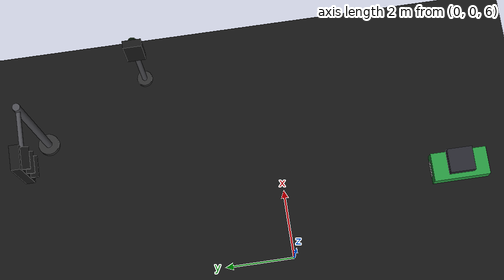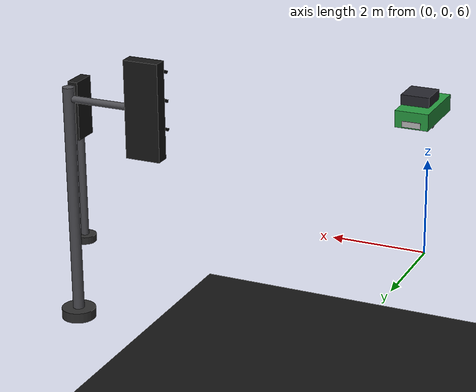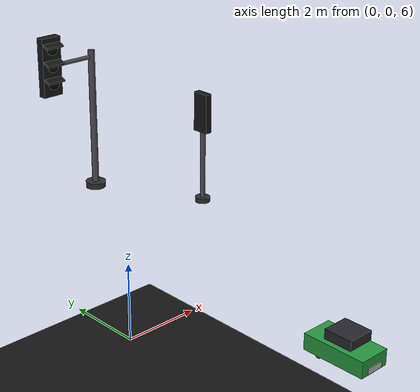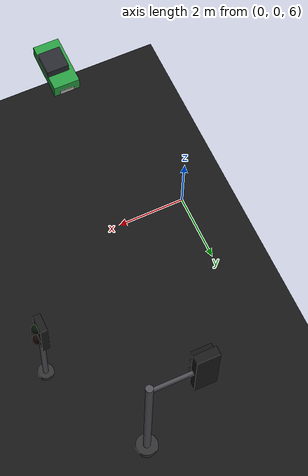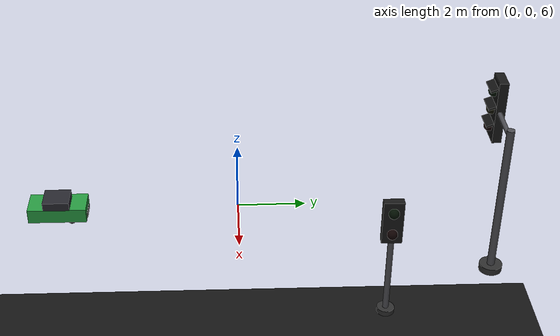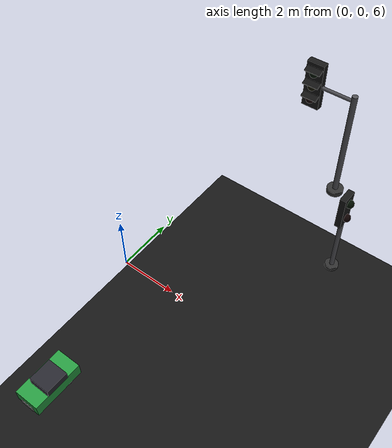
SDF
<sdf version="1.6">
 <world name="v2x_city_scene">
  <model name="ground_plane">
   <static>true</static>
   <link name="link">
    <collision name="collision">
     <geometry><plane><normal>0 0 1</normal><size>200 200</size></plane></geometry>
    </collision>
    <visual name="visual">
     <geometry><plane><normal>0 0 1</normal><size>200 200</size></plane></geometry>
     <material>
      <ambient>0.05 0.05 0.05 1</ambient>
      <diffuse>0.08 0.08 0.08 1</diffuse>
      <specular>0.0 0.0 0.0 1</specular>
     </material>
    </visual>
   </link>
  </model>
  <model name="car_2">
   <pose>1.8000 -5.0000 7.0000 0 0 1.5708</pose>
   <link name="chassis">
    <inertial>
     <mass>80.0</mass>
     <inertia><ixx>2.13</ixx><ixy>0</ixy><iyy>17.07</iyy><ixz>0</ixz><iyz>0</iyz><izz>17.07</izz></inertia>
    </inertial>
    <collision name="chassis_collision">
     <pose>0 0 0.25 0 0 0</pose>
     <geometry><box><size>1.6 0.8 0.4</size></box></geometry>
    </collision>
    <visual name="chassis_body">
     <pose>0 0 0.25 0 0 0</pose>
     <geometry><box><size>1.6 0.8 0.4</size></box></geometry>
     <material><ambient>0.15 0.6 0.25 1</ambient><diffuse>0.15 0.6 0.25 1</diffuse></material>
    </visual>
    <visual name="plate_rear">
     <pose>-0.81 0 0.15 0 0 3.14159265358979</pose>
     <geometry><box><size>0.02 0.44 0.14</size></box></geometry>
     <material>
      <script>
       <uri>file:///tmp/v2x_plates/placeholder/placeholder.material</uri>
       <name>v2x/plate_placeholder</name>
      </script>
     </material>
    </visual>
    <visual name="plate_front">
     <pose>0.81 0 0.15 0 0 0</pose>
     <geometry><box><size>0.02 0.44 0.14</size></box></geometry>
     <material>
      <script>
       <uri>file:///tmp/v2x_plates/placeholder/placeholder.material</uri>
       <name>v2x/plate_placeholder</name>
      </script>
     </material>
    </visual>
    <visual name="cabin">
     <pose>0 -0.08 0.57 0 0 0</pose>
     <geometry><box><size>0.72 0.68 0.24</size></box></geometry>
     <material><ambient>0.1 0.1 0.12 1</ambient><diffuse>0.15 0.15 0.18 1</diffuse></material>
    </visual>
   </link>
   <link name="left_wheel_link">
    <pose>0.40 0.35 0.10 0 0 0</pose>
    <inertial>
     <mass>2.0</mass>
     <inertia>
      <ixx>0.005067</ixx>
      <iyy>0.010000</iyy>
      <izz>0.005067</izz>
      <ixy>0</ixy>
      <ixz>0</ixz>
      <iyz>0</iyz>
     </inertia>
    </inertial>
    <collision name="collision">
     <pose>0 0 0 1.5707963 0 0</pose>
     <geometry><cylinder><radius>0.10</radius><length>0.08</length></cylinder></geometry>
     <surface>
      <friction><ode><mu>1.0</mu><mu2>1.0</mu2></ode></friction>
      <contact><ode><min_depth>0.001</min_depth><kp>1e8</kp></ode></contact>
     </surface>
    </collision>
    <visual name="visual">
     <pose>0 0 0 1.5707963 0 0</pose>
     <geometry><cylinder><radius>0.10</radius><length>0.08</length></cylinder></geometry>
     <material><ambient>0.05 0.05 0.05 1</ambient><diffuse>0.1 0.1 0.1 1</diffuse></material>
    </visual>
   </link>
   <joint name="left_wheel_joint" type="revolute">
    <parent>chassis</parent>
    <child>left_wheel_link</child>
    <axis><xyz>0 1 0</xyz><dynamics><friction>0.1</friction></dynamics></axis>
   </joint>
   <link name="right_wheel_link">
    <pose>0.40 -0.35 0.10 0 0 0</pose>
    <inertial>
     <mass>2.0</mass>
     <inertia>
      <ixx>0.005067</ixx>
      <iyy>0.010000</iyy>
      <izz>0.005067</izz>
      <ixy>0</ixy>
      <ixz>0</ixz>
      <iyz>0</iyz>
     </inertia>
    </inertial>
    <collision name="collision">
     <pose>0 0 0 1.5707963 0 0</pose>
     <geometry><cylinder><radius>0.10</radius><length>0.08</length></cylinder></geometry>
     <surface>
      <friction><ode><mu>1.0</mu><mu2>1.0</mu2></ode></friction>
      <contact><ode><min_depth>0.001</min_depth><kp>1e8</kp></ode></contact>
     </surface>
    </collision>
    <visual name="visual">
     <pose>0 0 0 1.5707963 0 0</pose>
     <geometry><cylinder><radius>0.10</radius><length>0.08</length></cylinder></geometry>
     <material><ambient>0.05 0.05 0.05 1</ambient><diffuse>0.1 0.1 0.1 1</diffuse></material>
    </visual>
   </link>
   <joint name="right_wheel_joint" type="revolute">
    <parent>chassis</parent>
    <child>right_wheel_link</child>
    <axis><xyz>0 1 0</xyz><dynamics><friction>0.1</friction></dynamics></axis>
   </joint>
   <link name="caster_link">
    <pose>-0.40 0 0.06 0 0 0</pose>
    <inertial>
     <mass>0.5</mass>
     <inertia><ixx>0.001</ixx><iyy>0.001</iyy><izz>0.001</izz><ixy>0</ixy><ixz>0</ixz><iyz>0</iyz></inertia>
    </inertial>
    <collision name="collision">
     <geometry><sphere><radius>0.06</radius></sphere></geometry>
     <surface>
      <friction><ode><mu>0.0</mu><mu2>0.0</mu2></ode></friction>
      <contact><ode><min_depth>0.001</min_depth><kp>1e8</kp></ode></contact>
     </surface>
    </collision>
    <visual name="visual">
     <geometry><sphere><radius>0.06</radius></sphere></geometry>
     <material><ambient>0.2 0.2 0.2 1</ambient><diffuse>0.3 0.3 0.3 1</diffuse></material>
    </visual>
   </link>
   <joint name="caster_joint" type="fixed"><parent>chassis</parent><child>caster_link</child></joint>
   <plugin name="diff_drive" filename="libgazebo_ros_diff_drive.so">
    <ros>
     <namespace>/car_2</namespace>
     <remapping>cmd_vel:=cmd_vel</remapping>
     <remapping>odom:=odom</remapping>
    </ros>
    <update_rate>100</update_rate>
    <cmd_vel_timeout>0.3</cmd_vel_timeout>
    <left_joint>left_wheel_joint</left_joint>
    <right_joint>right_wheel_joint</right_joint>
    <wheel_separation>0.70</wheel_separation>
    <wheel_diameter>0.20</wheel_diameter>
    <max_wheel_torque>12.0</max_wheel_torque>
    <max_wheel_acceleration>6.0</max_wheel_acceleration>
    <publish_odom>true</publish_odom>
    <publish_odom_tf>false</publish_odom_tf>
    <publish_wheel_tf>false</publish_wheel_tf>
    <odometry_frame>car_2_odom</odometry_frame>
    <robot_base_frame>car_2/base_link</robot_base_frame>
   </plugin>
  </model>
  <model name="tl_j3_ns">
   <static>true</static>
   <pose>4.2 6.6 6.7 0 0 0</pose>
   <link name="pole_link">
    <visual name="base_visual">
     <pose>0 0 0.09 0 0 0</pose>
     <geometry><cylinder><radius>0.30</radius><length>0.18</length></cylinder></geometry>
     <material><ambient>0.10 0.10 0.10 1</ambient><diffuse>0.18 0.18 0.18 1</diffuse></material>
    </visual>
    <visual name="pole_visual">
     <pose>0 0 2.20 0 0 0</pose>
     <geometry><cylinder><radius>0.10</radius><length>4.10</length></cylinder></geometry>
     <material><ambient>0.16 0.16 0.16 1</ambient><diffuse>0.30 0.30 0.32 1</diffuse></material>
    </visual>
    <visual name="arm_visual">
     <pose>-0.75 0 4.05 0 1.5708 0</pose>
     <geometry><cylinder><radius>0.06</radius><length>1.60</length></cylinder></geometry>
     <material><ambient>0.16 0.16 0.16 1</ambient><diffuse>0.30 0.30 0.32 1</diffuse></material>
    </visual>
    <visual name="housing_visual">
     <pose>-1.45 0.02 4.05 0 0 0</pose>
     <geometry><box><size>0.62 0.24 1.70</size></box></geometry>
     <material><ambient>0.04 0.04 0.04 1</ambient><diffuse>0.09 0.09 0.09 1</diffuse></material>
    </visual>
    <visual name="red_visor">
     <pose>-1.45 -0.15 3.70 0.38 0 0</pose>
     <geometry><box><size>0.56 0.30 0.05</size></box></geometry>
     <material><ambient>0.03 0.03 0.03 1</ambient><diffuse>0.07 0.07 0.07 1</diffuse></material>
    </visual>
    <visual name="yellow_visor">
     <pose>-1.45 -0.15 4.20 0.38 0 0</pose>
     <geometry><box><size>0.56 0.30 0.05</size></box></geometry>
     <material><ambient>0.03 0.03 0.03 1</ambient><diffuse>0.07 0.07 0.07 1</diffuse></material>
    </visual>
    <visual name="green_visor">
     <pose>-1.45 -0.15 4.70 0.38 0 0</pose>
     <geometry><box><size>0.56 0.30 0.05</size></box></geometry>
     <material><ambient>0.03 0.03 0.03 1</ambient><diffuse>0.07 0.07 0.07 1</diffuse></material>
    </visual>
    <collision name="pole_collision">
     <pose>0 0 2.20 0 0 0</pose>
     <geometry><cylinder><radius>0.13</radius><length>4.10</length></cylinder></geometry>
    </collision>
   </link>
   <link name="red_link">
    <pose>-1.45 -0.13 3.55 0 0 0</pose>
    <visual name="red_visual">
     <geometry><sphere><radius>0.15</radius></sphere></geometry>
     <material><ambient>0.05 0 0 1</ambient><diffuse>0.05 0 0 1</diffuse><emissive>0.05 0 0 1</emissive></material>
    </visual>
   </link>
   <link name="yellow_link">
    <pose>-1.45 -0.13 4.05 0 0 0</pose>
    <visual name="yellow_visual">
     <geometry><sphere><radius>0.15</radius></sphere></geometry>
     <material>
      <ambient>0.05 0.05 0 1</ambient>
      <diffuse>0.05 0.05 0 1</diffuse>
      <emissive>0.05 0.05 0 1</emissive>
     </material>
    </visual>
   </link>
   <link name="green_link">
    <pose>-1.45 -0.13 4.55 0 0 0</pose>
    <visual name="green_visual">
     <geometry><sphere><radius>0.15</radius></sphere></geometry>
     <material><ambient>0 0.05 0 1</ambient><diffuse>0 0.05 0 1</diffuse><emissive>0 0.05 0 1</emissive></material>
    </visual>
   </link>
   <plugin name="traffic_light" filename="libtraffic_light_plugin.so">
    <topic>traffic_light/J3_ns/state</topic>
   </plugin>
  </model>
  <model name="tl_j3_ns_ped">
   <static>true</static>
   <pose>5.8 3.6 6.7 0 0 1.5708</pose>
   <link name="link">
    <visual name="base_visual">
     <pose>0 0 0.07 0 0 0</pose>
     <geometry><cylinder><radius>0.22</radius><length>0.14</length></cylinder></geometry>
     <material><ambient>0.10 0.10 0.10 1</ambient><diffuse>0.18 0.18 0.18 1</diffuse></material>
    </visual>
    <visual name="pole_visual">
     <pose>0 0 1.45 0 0 0</pose>
     <geometry><cylinder><radius>0.075</radius><length>2.80</length></cylinder></geometry>
     <material><ambient>0.16 0.16 0.16 1</ambient><diffuse>0.30 0.30 0.32 1</diffuse></material>
    </visual>
    <visual name="housing_visual">
     <pose>0 0.02 2.75 0 0 0</pose>
     <geometry><box><size>0.50 0.20 1.15</size></box></geometry>
     <material><ambient>0.04 0.04 0.04 1</ambient><diffuse>0.09 0.09 0.09 1</diffuse></material>
    </visual>
    <visual name="red_hand">
     <pose>0 -0.11 2.45 0 0 0</pose>
     <geometry><sphere><radius>0.13</radius></sphere></geometry>
     <material><ambient>0.05 0 0 1</ambient><diffuse>0.05 0 0 1</diffuse><emissive>0.05 0 0 1</emissive></material>
    </visual>
    <visual name="green_walking">
     <pose>0 -0.11 3.05 0 0 0</pose>
     <geometry><sphere><radius>0.13</radius></sphere></geometry>
     <material><ambient>0 0.05 0 1</ambient><diffuse>0 0.05 0 1</diffuse><emissive>0 0.05 0 1</emissive></material>
    </visual>
    <collision name="pole_collision">
     <pose>0 0 1.45 0 0 0</pose>
     <geometry><cylinder><radius>0.10</radius><length>2.80</length></cylinder></geometry>
    </collision>
   </link>
   <plugin name="traffic_light_ped" filename="libv2x_traffic_light.so">
    <state_topic>traffic_light/J3_ns/pedestrian</state_topic>
    <link_name>link</link_name>
    <is_pedestrian>true</is_pedestrian>
   </plugin>
  </model>
 </world>
</sdf>
